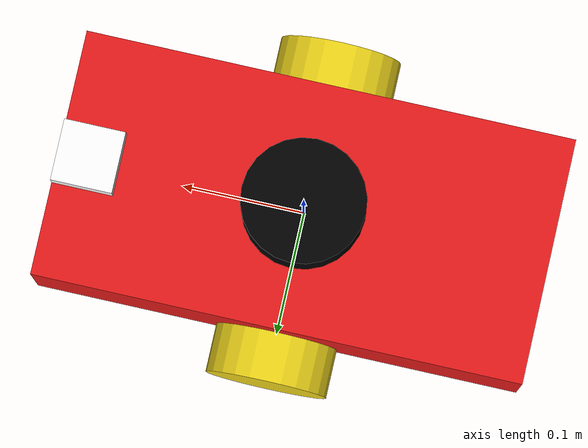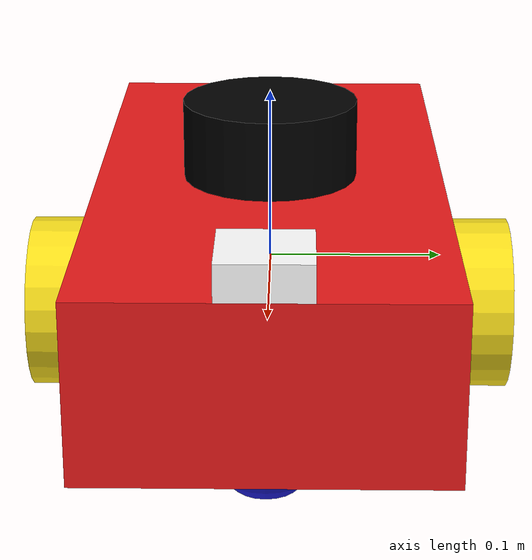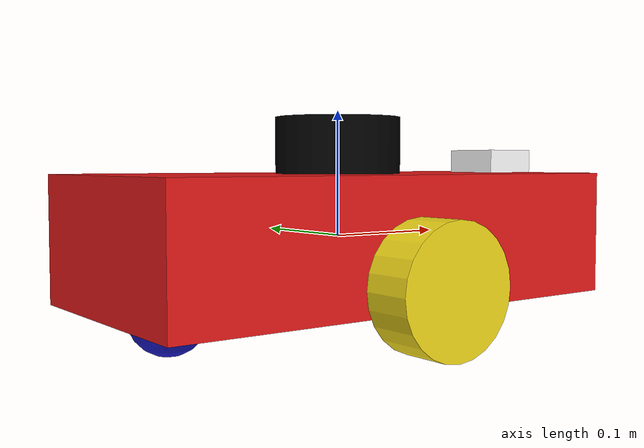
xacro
<?xml version="1.0"?>
<robot xmlns:xacro="http://www.ros.org/wiki/xacro" name="diff_drive_robot">

    <!-- ==================== PARAMETERS ==================== -->

    <!-- Coordinate system:
         +X = FRONT
         -X = REAR
         +Y = LEFT
         -Y = RIGHT
         +Z = UP
    -->

    <!-- Dimensions -->
    <xacro:property name="base_link_length" value="0.4"/>
    <xacro:property name="base_link_breadth" value="0.2"/>
    <xacro:property name="base_link_height" value="0.1"/>
    <xacro:property name="wheel_radius" value="0.05"/>
    <xacro:property name="wheel_width" value="0.04"/>
    <xacro:property name="caster_radius" value="0.03"/>

    <!-- Mass -->
    <xacro:property name="base_link_mass" value="0.2"/>
    <xacro:property name="wheel_mass" value="0.2"/>
    <xacro:property name="caster_wheel_mass" value="0.1"/>

    <!-- Wheel offsets -->
    <xacro:property name="wheel_y_offset" value="0.12"/>
    <xacro:property name="wheel_z_offset" value="0.03"/>
    <xacro:property name="wheel_roll" value="1.5708"/>

    <!-- Caster offsets -->
    <xacro:property name="caster_x_offset" value="0.15"/>
    <xacro:property name="caster_z_offset" value="0.049"/>

    <!-- ==================== INERTIA MACROS ==================== -->

    <!-- Box -->
    <xacro:macro name="box_inertia" params="mass length width height">
        <inertia
                ixx="${mass/12.0 * (width*width + height*height)}"
                ixy="0" ixz="0"
                iyy="${mass/12.0 * (length*length + height*height)}"
                iyz="0"
                izz="${mass/12.0 * (length*length + width*width)}"/>
    </xacro:macro>

    <!-- Cylinder -->
    <xacro:macro name="cylinder_inertia" params="mass radius length">
        <inertia
                ixx="${mass/12.0 * (3.0*radius*radius + length*length)}"
                ixy="0" ixz="0"
                iyy="${mass/12.0 * (3.0*radius*radius + length*length)}"
                iyz="0"
                izz="${mass/2.0 * radius*radius}"/>
    </xacro:macro>

    <!-- Sphere -->
    <xacro:macro name="sphere_inertia" params="mass radius">
        <inertia
                ixx="${2.0/5.0 * mass * radius*radius}"
                ixy="0" ixz="0"
                iyy="${2.0/5.0 * mass * radius*radius}"
                iyz="0"
                izz="${2.0/5.0 * mass * radius*radius}"/>
    </xacro:macro>

    <!-- ==================== MATERIALS ==================== -->

    <material name="red">
        <color rgba="0.9 0.1 0.1 1"/>
    </material>

    <material name="yellow">
        <color rgba="0.95 0.85 0.1 1"/>
    </material>

    <material name="blue">
        <color rgba="0.1 0.1 0.8 1"/>
    </material>

    <material name="black">
        <color rgba="0 0 0 1"/>
    </material>

    <material name="white">
        <color rgba="1 1 1 1"/>
    </material>
    <!-- ==================== BASE ==================== -->

    <link name="base_link">

        <visual>
            <geometry>
                <box size="${base_link_length} ${base_link_breadth} ${base_link_height}"/>
            </geometry>
            <material name="red"/>
        </visual>

        <collision>
            <geometry>
                <box size="${base_link_length} ${base_link_breadth} ${base_link_height}"/>
            </geometry>
        </collision>

        <inertial>
            <mass value="${base_link_mass}"/>

            <xacro:box_inertia
                    mass="${base_link_mass}"
                    length="${base_link_length}"
                    width="${base_link_breadth}"
                    height="${base_link_height}"/>
        </inertial>

    </link>

    <!-- ==================== WHEEL MACRO ==================== -->

    <xacro:macro name="wheel" params="name y_offset roll">

        <link name="${name}">

            <visual>
                <geometry>
                    <cylinder
                            radius="${wheel_radius}"
                            length="${wheel_width}"/>
                </geometry>
                <material name="yellow"/>
            </visual>

            <collision>
                <geometry>
                    <cylinder
                            radius="${wheel_radius}"
                            length="${wheel_width}"/>
                </geometry>
            </collision>

            <inertial>
                <mass value="${wheel_mass}"/>

                <xacro:cylinder_inertia
                        mass="${wheel_mass}"
                        radius="${wheel_radius}"
                        length="${wheel_width}"/>
            </inertial>

        </link>

        <joint name="${name}_joint" type="continuous">
            <parent link="base_link"/>
            <child link="${name}"/>

            <!-- +Y = LEFT, -Y = RIGHT -->
            <origin
                    xyz="0 ${y_offset} -${wheel_z_offset}"
                    rpy="${roll} 0 0"/>

            <axis xyz="0 0 1"/>
        </joint>

    </xacro:macro>

    <!-- LEFT WHEEL = +Y -->
    <xacro:wheel
            name="left_wheel"
            y_offset="${wheel_y_offset}"
            roll="-${wheel_roll}"/>

    <!-- RIGHT WHEEL = -Y -->
    <xacro:wheel
            name="right_wheel"
            y_offset="-${wheel_y_offset}"
            roll="-${wheel_roll}"/>

    <!-- ==================== CASTER ==================== -->

    <xacro:macro name="caster" params="name x_offset">

        <link name="${name}">

            <visual>
                <geometry>
                    <sphere radius="${caster_radius}"/>
                </geometry>
                <material name="blue"/>
            </visual>

            <collision>
                <geometry>
                    <sphere radius="${caster_radius}"/>
                </geometry>
            </collision>

            <inertial>
                <mass value="${caster_wheel_mass}"/>

                <xacro:sphere_inertia
                        mass="${caster_wheel_mass}"
                        radius="${caster_radius}"/>
            </inertial>

        </link>

        <joint name="${name}_joint" type="fixed">
            <parent link="base_link"/>
            <child link="${name}"/>

            <!-- +X = FRONT, -X = REAR -->
            <origin
                    xyz="${x_offset} 0 -${caster_z_offset}"
                    rpy="0 0 0"/>
        </joint>

    </xacro:macro>

    <!-- FRONT CASTER = +X -->
    <xacro:caster
            name="front_caster"
            x_offset="${caster_x_offset}"/>

    <!-- REAR CASTER = -X -->
    <xacro:caster
            name="rear_caster"
            x_offset="-${caster_x_offset}"/>

    <!-- ==================== LIDAR ==================== -->

    <link name="lidar_link">

        <visual>
            <geometry>
                <cylinder length="0.05" radius="0.05"/>
            </geometry>
            <material name="black"/>
        </visual>

    </link>

    <joint name="lidar_joint" type="fixed">
        <parent link="base_link"/>
        <child link="lidar_link"/>

        <!-- UNCHANGED -->
        <origin xyz="0.0 0.0 0.07"/>

    </joint>

    <!-- ==================== CAMETA ==================== -->
    <link name="camera_link">
        <visual>
            <geometry>
                <box size="0.05 0.05 0.02"/>
            </geometry>
            <material name="white"/>
        </visual>
    </link>
    <joint name="camera_optical_joint" type="fixed">
        <parent link="base_link"/>
        <child link="camera_link"/>
        <origin xyz="0.175 0 0.06" rpy="0 0 0"/>
    </joint>
    <!-- ==================== GAZEBO ==================== -->

    <gazebo reference="left_wheel">
        <mu1>1.0</mu1>
        <mu2>1.0</mu2>
    </gazebo>

    <gazebo reference="right_wheel">
        <mu1>1.0</mu1>
        <mu2>1.0</mu2>
    </gazebo>

    <gazebo reference="front_caster">
        <mu1>0.0</mu1>
        <mu2>0.0</mu2>
    </gazebo>

    <gazebo reference="rear_caster">
        <mu1>0.0</mu1>
        <mu2>0.0</mu2>
    </gazebo>

    <!-- ==================== DIFF DRIVE ==================== -->

    <gazebo>

        <plugin
                filename="gz-sim-diff-drive-system"
                name="gz::sim::systems::DiffDrive">

            <left_joint>left_wheel_joint</left_joint>
            <right_joint>right_wheel_joint</right_joint>

            <wheel_separation>${2.0 * wheel_y_offset}</wheel_separation>
            <wheel_radius>${wheel_radius}</wheel_radius>

            <topic>cmd_vel</topic>
            <odom_publish_frequency>30</odom_publish_frequency>

            <frame_id>odom</frame_id>
            <child_frame_id>base_link</child_frame_id>

        </plugin>

        <plugin
                filename="gz-sim-joint-state-publisher-system"
                name="gz::sim::systems::JointStatePublisher"/>

    </gazebo>

</robot>
